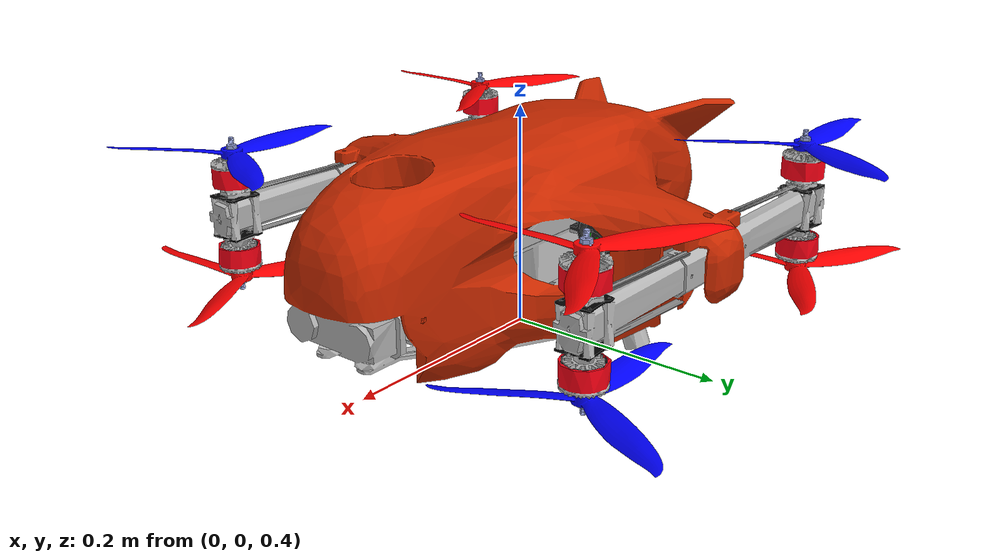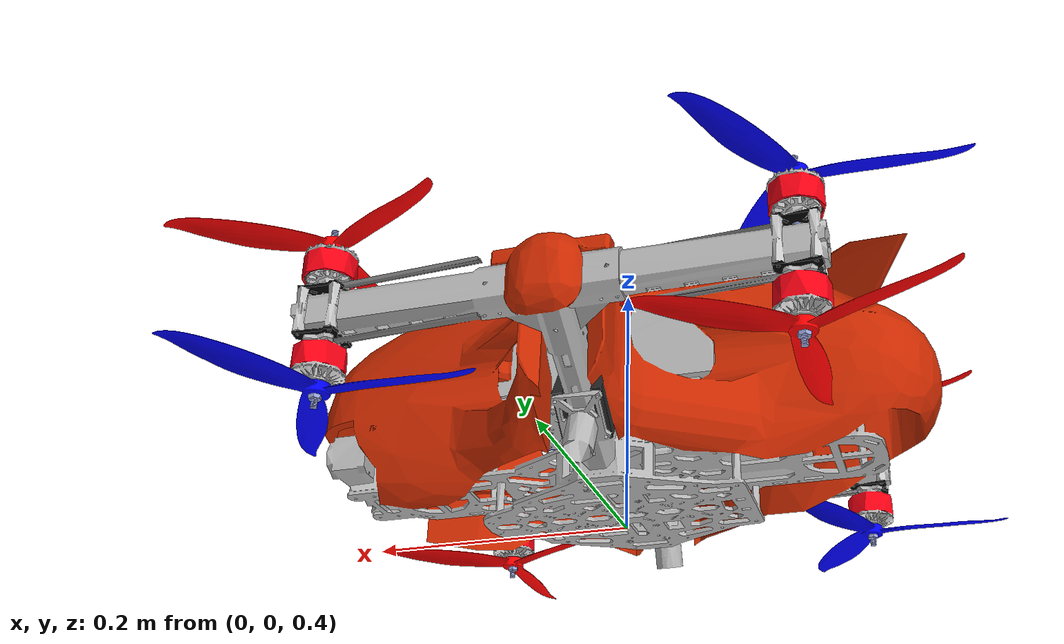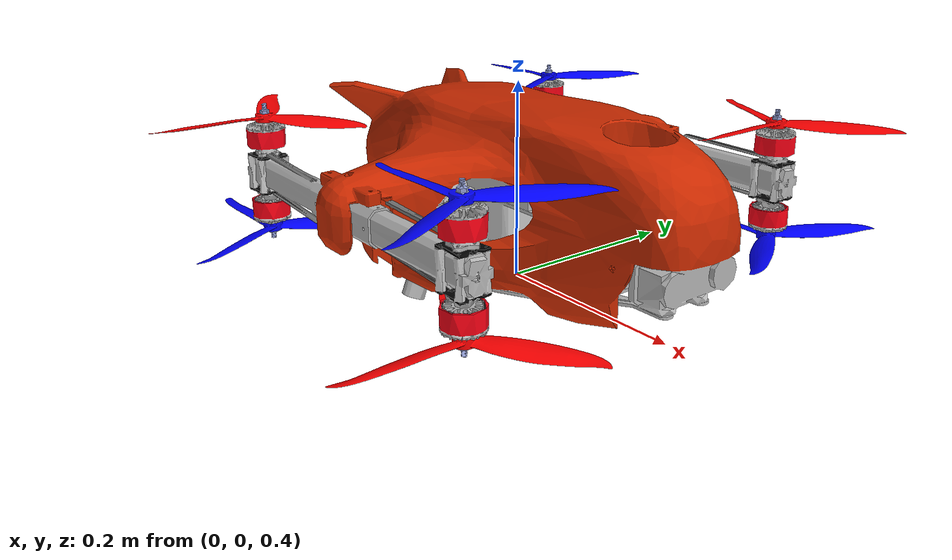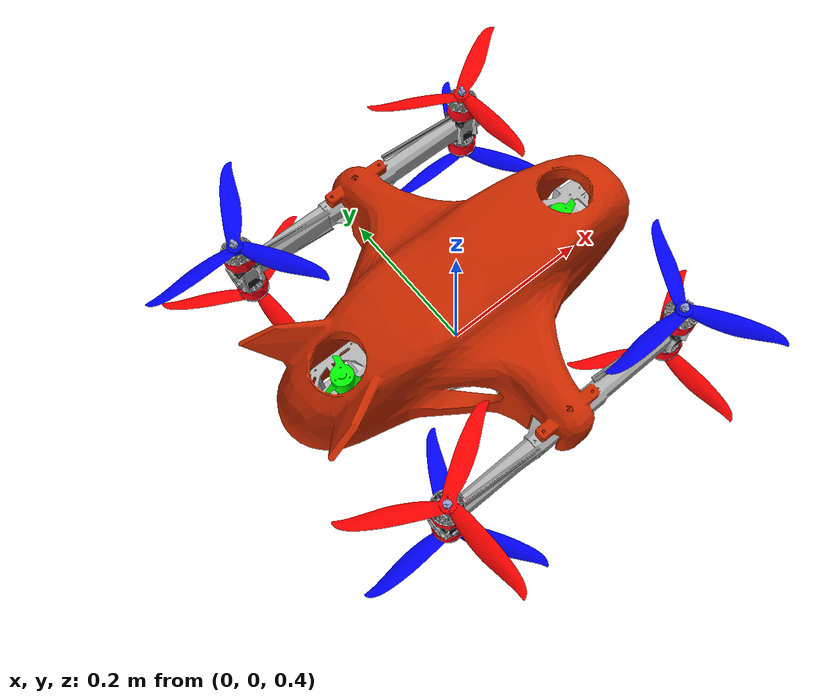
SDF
<?xml version="1.0" encoding="UTF-8"?>
<sdf version="1.9">
  <model name="teleaquah8">
    <!-- 虚拟世界链接：补充惯性（Gazebo必需） -->
    <!-- 使用 ball 关节直接连接到 world -->

    <pose>0 0 0.5 0 0 0</pose>

    <link name="base_link">
      <gravity>1</gravity>
      <velocity_decay>
        <linear>0.1</linear>
        <angular>0.1</angular>
      </velocity_decay>

      <inertial>
        <mass>4.1</mass>
        <inertia>
          <ixx>0.07</ixx>
          <ixy>0</ixy>
          <ixz>0</ixz>

          <iyy>0.07</iyy>
          <iyz>0</iyz>

          <izz>0.10</izz>
        </inertia>
        <pose>0 0 -0.05 0 0 0</pose>
      </inertial>

      <visual name="base_visual">
        <geometry>
          <mesh>
            <scale>1 1 1</scale>
            <uri>model://teleaquah8/meshes/model.dae</uri>
          </mesh>
        </geometry>
      </visual>

      <collision name="base_buoyancy_collision">
        <pose>0 0 -0.03 0 0 0</pose>
        <geometry>
          <box><size>0.26 0.18 0.05</size></box>
        </geometry>
        <surface>
          <contact>
            <ode>
              <min_depth>0.001</min_depth>
              <max_vel>0.1</max_vel>
              <kp>100000.0</kp>
              <kd>100.0</kd>
            </ode>
          </contact>
          <friction>
            <ode>
              <mu>0.4</mu>
              <mu2>0.4</mu2>
            </ode>
          </friction>
        </surface>
      </collision>

      <sensor name="imu_sensor" type="imu">
        <always_on>1</always_on>
        <update_rate>250</update_rate>
        <visualize>true</visualize>
        <imu>
          <angular_velocity>
            <x><noise type="gaussian"><mean>0</mean><stddev>2e-4</stddev></noise></x>
            <y><noise type="gaussian"><mean>0</mean><stddev>2e-4</stddev></noise></y>
            <z><noise type="gaussian"><mean>0</mean><stddev>2e-4</stddev></noise></z>
          </angular_velocity>
          <linear_acceleration>
            <x><noise type="gaussian"><mean>0</mean><stddev>1.7e-2</stddev></noise></x>
            <y><noise type="gaussian"><mean>0</mean><stddev>1.7e-2</stddev></noise></y>
            <z><noise type="gaussian"><mean>0</mean><stddev>1.7e-2</stddev></noise></z>
          </linear_acceleration>
        </imu>
      </sensor>
      <sensor name="magnetometer_sensor" type="magnetometer">
        <always_on>1</always_on>
        <update_rate>100</update_rate>
        <magnetometer>
          <x><noise type="gaussian"><stddev>0.0001</stddev></noise></x>
          <y><noise type="gaussian"><stddev>0.0001</stddev></noise></y>
          <z><noise type="gaussian"><stddev>0.0001</stddev></noise></z>
        </magnetometer>
      </sensor>
      <sensor name="air_pressure_sensor" type="air_pressure">
        <always_on>1</always_on>
        <update_rate>50</update_rate>
        <air_pressure>
          <pressure>
            <noise type="gaussian"><mean>0</mean><stddev>0.01</stddev></noise>
          </pressure>
        </air_pressure>
      </sensor>
      <sensor name="navsat_sensor" type="navsat">
        <always_on>1</always_on>
        <update_rate>30</update_rate>
      </sensor>
    </link>

    <link name="buoyancy_shell_link">
      <pose relative_to="base_link">0 0 0 0 0 0</pose>
      <inertial>
        <mass>1e-6</mass>
        <inertia>
          <ixx>1e-9</ixx>
          <iyy>1e-9</iyy>
          <izz>1e-9</izz>
          <ixy>0</ixy>
          <ixz>0</ixz>
          <iyz>0</iyz>
        </inertia>
      </inertial>

      <collision name="shell_buoyancy_collision">
        <pose>0 0 0.05 0 0 0</pose>
        <geometry>
          <box>
            <size>0.24 0.24 0.0546</size>
          </box>
        </geometry>
      </collision>
    </link>

    <joint name="buoyancy_shell_joint" type="fixed">
      <parent>base_link</parent>
      <child>buoyancy_shell_link</child>
    </joint>

    <joint name="rotor_0_joint" type="revolute">
      <parent>base_link</parent>
      <child>rotor_0</child>
      <pose relative_to="base_link">0.163 -0.187 0.061 0 0 0</pose>
      <axis><xyz>0 0 1</xyz></axis>
    </joint>
    <link name="rotor_0">
      <pose relative_to="rotor_0_joint">0 0 0 0 0 0</pose>
      <inertial><mass>0.113</mass><inertia><ixx>0.0001</ixx><iyy>0.0001</iyy><izz>0.0002</izz></inertia></inertial>
      <visual name="rotor_0_visual"><geometry><mesh><scale>1 1 1</scale><uri>model://teleaquah8/meshes/ccw_prop.stl</uri></mesh></geometry><material><diffuse>0 0 1 1</diffuse></material></visual>
    </link>
    <plugin filename="gz-sim-multicopter-motor-model-system" name="gz::sim::systems::MulticopterMotorModel">
      <jointName>rotor_0_joint</jointName>
      <linkName>rotor_0</linkName>
      <turningDirection>ccw</turningDirection>
      <timeConstantUp>0.015</timeConstantUp><timeConstantDown>0.03</timeConstantDown>
      <maxRotVelocity>1585</maxRotVelocity>
      <motorConstant>1.64e-05</motorConstant>
      <momentConstant>0.018</momentConstant>
      <commandSubTopic>command/motor_speed</commandSubTopic>
      <motorNumber>0</motorNumber>
      <rotorDragCoefficient>0.0001</rotorDragCoefficient><rollingMomentCoefficient>1e-06</rollingMomentCoefficient>
      <motorType>velocity</motorType>
    </plugin>

    <joint name="rotor_1_joint" type="revolute">
      <parent>base_link</parent>
      <child>rotor_1</child>
      <pose relative_to="base_link">0.163 0.187 0.061 0 0 0</pose>
      <axis><xyz>0 0 1</xyz></axis>
    </joint>
    <link name="rotor_1">
      <pose relative_to="rotor_1_joint">0 0 0 0 0 0</pose>
      <inertial><mass>0.113</mass><inertia><ixx>0.0001</ixx><iyy>0.0001</iyy><izz>0.0002</izz></inertia></inertial>
      <visual name="rotor_1_visual"><geometry><mesh><scale>1 1 1</scale><uri>model://teleaquah8/meshes/cw_prop.stl</uri></mesh></geometry><material><diffuse>1 0 0 1</diffuse></material></visual>
    </link>
    <plugin filename="gz-sim-multicopter-motor-model-system" name="gz::sim::systems::MulticopterMotorModel">
      <jointName>rotor_1_joint</jointName>
      <linkName>rotor_1</linkName>
      <turningDirection>cw</turningDirection>
      <timeConstantUp>0.015</timeConstantUp><timeConstantDown>0.03</timeConstantDown>
      <maxRotVelocity>1585</maxRotVelocity>
      <motorConstant>1.64e-05</motorConstant>
      <momentConstant>0.018</momentConstant>
      <commandSubTopic>command/motor_speed</commandSubTopic>
      <motorNumber>1</motorNumber>
      <rotorDragCoefficient>0.0001</rotorDragCoefficient><rollingMomentCoefficient>1e-06</rollingMomentCoefficient>
      <motorType>velocity</motorType>
    </plugin>

    <joint name="rotor_2_joint" type="revolute">
      <parent>base_link</parent>
      <child>rotor_2</child>
      <pose relative_to="base_link">-0.166 0.187 0.061 0 0 0</pose>
      <axis><xyz>0 0 1</xyz></axis>
    </joint>
    <link name="rotor_2">
      <pose relative_to="rotor_2_joint">0 0 0 0 0 0</pose>
      <inertial><mass>0.113</mass><inertia><ixx>0.0001</ixx><iyy>0.0001</iyy><izz>0.0002</izz></inertia></inertial>
      <visual name="rotor_2_visual"><geometry><mesh><scale>1 1 1</scale><uri>model://teleaquah8/meshes/ccw_prop.stl</uri></mesh></geometry><material><diffuse>0 0 1 1</diffuse></material></visual>
    </link>
    <plugin filename="gz-sim-multicopter-motor-model-system" name="gz::sim::systems::MulticopterMotorModel">
      <jointName>rotor_2_joint</jointName>
      <linkName>rotor_2</linkName>
      <turningDirection>ccw</turningDirection>
      <timeConstantUp>0.015</timeConstantUp><timeConstantDown>0.03</timeConstantDown>
      <maxRotVelocity>1585</maxRotVelocity>
      <motorConstant>1.64e-05</motorConstant>
      <momentConstant>0.018</momentConstant>
      <commandSubTopic>command/motor_speed</commandSubTopic>
      <motorNumber>2</motorNumber>
      <rotorDragCoefficient>0.0001</rotorDragCoefficient><rollingMomentCoefficient>1e-06</rollingMomentCoefficient>
      <motorType>velocity</motorType>
    </plugin>

    <joint name="rotor_3_joint" type="revolute">
      <parent>base_link</parent>
      <child>rotor_3</child>
      <pose relative_to="base_link">-0.166 -0.187 0.061 0 0 0</pose>
      <axis><xyz>0 0 1</xyz></axis>
    </joint>
    <link name="rotor_3">
      <pose relative_to="rotor_3_joint">0 0 0 0 0 0</pose>
      <inertial><mass>0.113</mass><inertia><ixx>0.0001</ixx><iyy>0.0001</iyy><izz>0.0002</izz></inertia></inertial>
      <visual name="rotor_3_visual"><geometry><mesh><scale>1 1 1</scale><uri>model://teleaquah8/meshes/cw_prop.stl</uri></mesh></geometry><material><diffuse>1 0 0 1</diffuse></material></visual>
    </link>
    <plugin filename="gz-sim-multicopter-motor-model-system" name="gz::sim::systems::MulticopterMotorModel">
      <jointName>rotor_3_joint</jointName>
      <linkName>rotor_3</linkName>
      <turningDirection>cw</turningDirection>
      <timeConstantUp>0.015</timeConstantUp><timeConstantDown>0.03</timeConstantDown>
      <maxRotVelocity>1585</maxRotVelocity>
      <motorConstant>1.64e-05</motorConstant>
      <momentConstant>0.018</momentConstant>
      <commandSubTopic>command/motor_speed</commandSubTopic>
      <motorNumber>3</motorNumber>
      <rotorDragCoefficient>0.0001</rotorDragCoefficient><rollingMomentCoefficient>1e-06</rollingMomentCoefficient>
      <motorType>velocity</motorType>
    </plugin>

    <joint name="rotor_4_joint" type="revolute">
      <parent>base_link</parent>
      <child>rotor_4</child>
      <pose relative_to="base_link">0.163 0.187 -0.052 0 0 0</pose>
      <axis><xyz>0 0 1</xyz></axis>
    </joint>
    <link name="rotor_4">
      <pose relative_to="rotor_4_joint">0 0 0 0 0 0</pose>
      <inertial><mass>0.113</mass><inertia><ixx>0.0001</ixx><iyy>0.0001</iyy><izz>0.0002</izz></inertia></inertial>
      <visual name="rotor_4_visual"><geometry><mesh><scale>1 1 1</scale><uri>model://teleaquah8/meshes/ccw_prop.stl</uri></mesh></geometry><material><diffuse>0 0 1 1</diffuse></material></visual>
    </link>
    <plugin filename="gz-sim-multicopter-motor-model-system" name="gz::sim::systems::MulticopterMotorModel">
      <jointName>rotor_4_joint</jointName>
      <linkName>rotor_4</linkName>
      <turningDirection>ccw</turningDirection>
      <timeConstantUp>0.015</timeConstantUp><timeConstantDown>0.03</timeConstantDown>
      <maxRotVelocity>1585</maxRotVelocity>
      <motorConstant>1.64e-05</motorConstant>
      <momentConstant>0.018</momentConstant>
      <commandSubTopic>command/motor_speed</commandSubTopic>
      <motorNumber>4</motorNumber>
      <rotorDragCoefficient>0.0001</rotorDragCoefficient><rollingMomentCoefficient>1e-06</rollingMomentCoefficient>
      <motorType>velocity</motorType>
    </plugin>

    <joint name="rotor_5_joint" type="revolute">
      <parent>base_link</parent>
      <child>rotor_5</child>
      <pose relative_to="base_link">0.163 -0.187 -0.052 0 0 0</pose>
      <axis><xyz>0 0 1</xyz></axis>
    </joint>
    <link name="rotor_5">
      <pose relative_to="rotor_5_joint">0 0 0 0 0 0</pose>
      <inertial><mass>0.113</mass><inertia><ixx>0.0001</ixx><iyy>0.0001</iyy><izz>0.0002</izz></inertia></inertial>
      <visual name="rotor_5_visual"><geometry><mesh><scale>1 1 1</scale><uri>model://teleaquah8/meshes/cw_prop.stl</uri></mesh></geometry><material><diffuse>1 0 0 1</diffuse></material></visual>
    </link>
    <plugin filename="gz-sim-multicopter-motor-model-system" name="gz::sim::systems::MulticopterMotorModel">
      <jointName>rotor_5_joint</jointName>
      <linkName>rotor_5</linkName>
      <turningDirection>cw</turningDirection>
      <timeConstantUp>0.015</timeConstantUp><timeConstantDown>0.03</timeConstantDown>
      <maxRotVelocity>1585</maxRotVelocity>
      <motorConstant>1.64e-05</motorConstant>
      <momentConstant>0.018</momentConstant>
      <commandSubTopic>command/motor_speed</commandSubTopic>
      <motorNumber>5</motorNumber>
      <rotorDragCoefficient>0.0001</rotorDragCoefficient><rollingMomentCoefficient>1e-06</rollingMomentCoefficient>
      <motorType>velocity</motorType>
    </plugin>

    <joint name="rotor_6_joint" type="revolute">
      <parent>base_link</parent>
      <child>rotor_6</child>
      <pose relative_to="base_link">-0.166 -0.187 -0.052 0 0 0</pose>
      <axis><xyz>0 0 1</xyz></axis>
    </joint>
    <link name="rotor_6">
      <pose relative_to="rotor_6_joint">0 0 0 0 0 0</pose>
      <inertial><mass>0.113</mass><inertia><ixx>0.0001</ixx><iyy>0.0001</iyy><izz>0.0002</izz></inertia></inertial>
      <visual name="rotor_6_visual"><geometry><mesh><scale>1 1 1</scale><uri>model://teleaquah8/meshes/ccw_prop.stl</uri></mesh></geometry><material><diffuse>0 0 1 1</diffuse></material></visual>
    </link>
    <plugin filename="gz-sim-multicopter-motor-model-system" name="gz::sim::systems::MulticopterMotorModel">
      <jointName>rotor_6_joint</jointName>
      <linkName>rotor_6</linkName>
      <turningDirection>ccw</turningDirection>
      <timeConstantUp>0.015</timeConstantUp><timeConstantDown>0.03</timeConstantDown>
      <maxRotVelocity>1585</maxRotVelocity>
      <motorConstant>1.64e-05</motorConstant>
      <momentConstant>0.018</momentConstant>
      <commandSubTopic>command/motor_speed</commandSubTopic>
      <motorNumber>6</motorNumber>
      <rotorDragCoefficient>0.0001</rotorDragCoefficient><rollingMomentCoefficient>1e-06</rollingMomentCoefficient>
      <motorType>velocity</motorType>
    </plugin>

    <joint name="rotor_7_joint" type="revolute">
      <parent>base_link</parent>
      <child>rotor_7</child>
      <pose relative_to="base_link">-0.166 0.187 -0.052 0 0 0</pose>
      <axis><xyz>0 0 1</xyz></axis>
    </joint>
    <link name="rotor_7">
      <pose relative_to="rotor_7_joint">0 0 0 0 0 0</pose>
      <inertial><mass>0.113</mass><inertia><ixx>0.0001</ixx><iyy>0.0001</iyy><izz>0.0002</izz></inertia></inertial>
      <visual name="rotor_7_visual"><geometry><mesh><scale>1 1 1</scale><uri>model://teleaquah8/meshes/cw_prop.stl</uri></mesh></geometry><material><diffuse>1 0 0 1</diffuse></material></visual>
    </link>
    <plugin filename="gz-sim-multicopter-motor-model-system" name="gz::sim::systems::MulticopterMotorModel">
      <jointName>rotor_7_joint</jointName>
      <linkName>rotor_7</linkName>
      <turningDirection>cw</turningDirection>
      <timeConstantUp>0.015</timeConstantUp><timeConstantDown>0.03</timeConstantDown>
      <maxRotVelocity>1585</maxRotVelocity>
      <motorConstant>1.64e-05</motorConstant>
      <momentConstant>0.018</momentConstant>
      <commandSubTopic>command/motor_speed</commandSubTopic>
      <motorNumber>7</motorNumber>
      <rotorDragCoefficient>0.0001</rotorDragCoefficient><rollingMomentCoefficient>1e-06</rollingMomentCoefficient>
      <motorType>velocity</motorType>
    </plugin>

    <joint name="rotor_8_joint" type="revolute">
      <parent>base_link</parent>
      <child>rotor_8</child>
      <pose relative_to="base_link">-0.004 -0.093 0.003 0 0 0</pose>
      <axis><xyz>-1 0 0</xyz></axis>
    </joint>
    <link name="rotor_8">
      <pose relative_to="rotor_8_joint">0 0 0 0 0 0</pose>
      <inertial><mass>0.1</mass><inertia><ixx>0.001</ixx><iyy>0.001</iyy><izz>0.001</izz></inertia></inertial>
      <visual name="rotor_8_visual"><geometry><mesh><scale>1 1 1</scale><uri>model://teleaquah8/meshes/right_waterprop.stl</uri></mesh></geometry><material><diffuse>0 1 0 1</diffuse></material></visual>
    </link>
    <plugin filename="gz-sim-bidir-motor-model-system" name="gz::sim::v8::systems::BiDirectionalMotorModel">
      <jointName>rotor_8_joint</jointName>
      <linkName>rotor_8</linkName>
      <turningDirection>ccw</turningDirection>
      <timeConstantUp>0.0125</timeConstantUp>
      <timeConstantDown>0.025</timeConstantDown>
      <motorConstant>9.6065e-07</motorConstant>
      <momentConstant>-3.318e-10</momentConstant>
      <commandSubTopic>servo_0</commandSubTopic>
      <motorNumber>0</motorNumber>
      <thrustAxis>-1 0 0</thrustAxis>
      <commandGain>57.29</commandGain>
      <deadbandOmega>10</deadbandOmega>
      <maxOmega>3500</maxOmega>
      <maxThrust>15</maxThrust>
      <maxTorque>1.5</maxTorque>
      <forwardCoeff>1.0</forwardCoeff>
      <reverseCoeff>0.86</reverseCoeff>
    </plugin>

    <joint name="rotor_9_joint" type="revolute">
      <parent>base_link</parent>
      <child>rotor_9</child>
      <pose relative_to="base_link">0.159 0 0.017 0 0 0</pose>
      <axis><xyz>0 0 -1</xyz></axis>
    </joint>
    <link name="rotor_9">
      <pose relative_to="rotor_9_joint">0 0 0 0 0 0</pose>
      <inertial><mass>0.1</mass><inertia><ixx>0.001</ixx><iyy>0.001</iyy><izz>0.001</izz></inertia></inertial>
      <visual name="rotor_9_visual"><geometry><mesh><scale>1 1 1</scale><uri>model://teleaquah8/meshes/front_waterprop.stl</uri></mesh></geometry><material><diffuse>0 1 0 1</diffuse></material></visual>
    </link>
    <plugin filename="gz-sim-bidir-motor-model-system" name="gz::sim::v8::systems::BiDirectionalMotorModel">
      <jointName>rotor_9_joint</jointName>
      <linkName>rotor_9</linkName>
      <turningDirection>ccw</turningDirection>
      <timeConstantUp>0.0125</timeConstantUp>
      <timeConstantDown>0.025</timeConstantDown>
      <motorConstant>9.6065e-07</motorConstant>
      <momentConstant>-3.318e-10</momentConstant>
      <commandSubTopic>servo_1</commandSubTopic>
      <motorNumber>0</motorNumber>
      <thrustAxis>0 0 -1</thrustAxis>
      <commandGain>57.29</commandGain>
      <deadbandOmega>10</deadbandOmega>
      <maxOmega>3500</maxOmega>
      <maxThrust>15</maxThrust>
      <maxTorque>1.5</maxTorque>
      <forwardCoeff>1.0</forwardCoeff>
      <reverseCoeff>0.86</reverseCoeff>
    </plugin>

    <joint name="rotor_10_joint" type="revolute">
      <parent>base_link</parent>
      <child>rotor_10</child>
      <pose relative_to="base_link">-0.004 0.093 0.003 0 0 0</pose>
      <axis><xyz>1 0 0</xyz></axis>
    </joint>
    <link name="rotor_10">
      <pose relative_to="rotor_10_joint">0 0 0 0 0 0</pose>
      <inertial><mass>0.1</mass><inertia><ixx>0.001</ixx><iyy>0.001</iyy><izz>0.001</izz></inertia></inertial>
      <visual name="rotor_10_visual"><geometry><mesh><scale>1 1 1</scale><uri>model://teleaquah8/meshes/left_waterprop.stl</uri></mesh></geometry><material><diffuse>0 1 0 1</diffuse></material></visual>
    </link>
    <plugin filename="gz-sim-bidir-motor-model-system" name="gz::sim::v8::systems::BiDirectionalMotorModel">
      <jointName>rotor_10_joint</jointName>
      <linkName>rotor_10</linkName>
      <turningDirection>ccw</turningDirection>
      <timeConstantUp>0.0125</timeConstantUp>
      <timeConstantDown>0.025</timeConstantDown>
      <motorConstant>9.6065e-07</motorConstant>
      <momentConstant>-3.318e-10</momentConstant>
      <commandSubTopic>servo_2</commandSubTopic>
      <motorNumber>0</motorNumber>
      <thrustAxis>1 0 0</thrustAxis>
      <commandGain>57.29</commandGain>
      <deadbandOmega>10</deadbandOmega>
      <maxOmega>3500</maxOmega>
      <maxThrust>15</maxThrust>
      <maxTorque>1.5</maxTorque>
      <forwardCoeff>1.0</forwardCoeff>
      <reverseCoeff>0.86</reverseCoeff>
    </plugin>

    <joint name="rotor_11_joint" type="revolute">
      <parent>base_link</parent>
      <child>rotor_11</child>
      <pose relative_to="base_link">-0.161 0. 0.017 0 0 0</pose>
      <axis><xyz>0 0 -1</xyz></axis>
    </joint>
    <link name="rotor_11">
      <pose relative_to="rotor_11_joint">0 0 0 0 0 0</pose>
      <inertial><mass>0.1</mass><inertia><ixx>0.001</ixx><iyy>0.001</iyy><izz>0.001</izz></inertia></inertial>
      <visual name="rotor_11_visual"><geometry><mesh><scale>1 1 1</scale><uri>model://teleaquah8/meshes/back_waterprop.stl</uri></mesh></geometry><material><diffuse>0 1 0 1</diffuse></material></visual>
    </link>
    <plugin filename="gz-sim-bidir-motor-model-system" name="gz::sim::v8::systems::BiDirectionalMotorModel">
      <jointName>rotor_11_joint</jointName>
      <linkName>rotor_11</linkName>
      <turningDirection>ccw</turningDirection>
      <timeConstantUp>0.0125</timeConstantUp>
      <timeConstantDown>0.025</timeConstantDown>
      <motorConstant>9.6065e-07</motorConstant>
      <momentConstant>-3.318e-10</momentConstant>
      <commandSubTopic>servo_3</commandSubTopic>
      <motorNumber>0</motorNumber>
      <thrustAxis>0 0 -1</thrustAxis>
      <commandGain>57.29</commandGain>
      <deadbandOmega>10</deadbandOmega>
      <maxOmega>3500</maxOmega>
      <maxThrust>15</maxThrust>
      <maxTorque>1.5</maxTorque>
      <forwardCoeff>1.0</forwardCoeff>
      <reverseCoeff>0.86</reverseCoeff>
    </plugin>
    <plugin filename="/home/user/external/plugins/hydrodynamics/build/libhydrodynamics.so" name="zyshine3_gz_plugins::HybridHydrodynamics">
      <hydrodynamics>
        <link_name>base_link</link_name>
        <surface_z>0.0</surface_z>
        <transition_band>0.1</transition_band>
        <fluid_density_water>1000.0</fluid_density_water>
        <fluid_density_air>1.225</fluid_density_air>
        <default_current>0 0 0</default_current>
        <air_clearance_margin>-0.02</air_clearance_margin>
        <sample_point>0.22 0.0 0.08</sample_point>
        <sample_point>0.22 0.0 -0.05</sample_point>
        <sample_point>0.10 0.18 0.06</sample_point>
        <sample_point>0.10 -0.18 0.06</sample_point>
        <sample_point>0.00 0.0 0.10</sample_point>
        <sample_point>0.00 0.0 -0.06</sample_point>
        <sample_point>-0.18 0.18 0.04</sample_point>
        <sample_point>-0.18 -0.18 0.04</sample_point>
        <sample_point>-0.22 0.0 -0.02</sample_point>

        <water_thruster_link_name>rotor_8</water_thruster_link_name>
        <water_thruster_link_name>rotor_9</water_thruster_link_name>
        <water_thruster_link_name>rotor_10</water_thruster_link_name>
        <water_thruster_link_name>rotor_11</water_thruster_link_name>

        <air_prop_link_name>rotor_0</air_prop_link_name>
        <air_prop_link_name>rotor_1</air_prop_link_name>
        <air_prop_link_name>rotor_2</air_prop_link_name>
        <air_prop_link_name>rotor_3</air_prop_link_name>
        <air_prop_link_name>rotor_4</air_prop_link_name>
        <air_prop_link_name>rotor_5</air_prop_link_name>
        <air_prop_link_name>rotor_6</air_prop_link_name>
        <air_prop_link_name>rotor_7</air_prop_link_name>

        <enable_added_mass>true</enable_added_mass>
        <enable_added_mass_coriolis>true</enable_added_mass_coriolis>
        <xDotU>-0.6</xDotU>
        <yDotV>-1.0</yDotV>
        <zDotW>-0.6</zDotW>
        <kDotP>-0.1</kDotP>
        <mDotQ>-0.05</mDotQ>
        <nDotR>-0.04</nDotR>

        <added_mass_velocity_filter_tau>0.03</added_mass_velocity_filter_tau>
        <added_mass_accel_filter_tau>0.06</added_mass_accel_filter_tau>
        <added_mass_linear_accel_limit>4.0</added_mass_linear_accel_limit>
        <added_mass_angular_accel_limit>8.0</added_mass_angular_accel_limit>
        <added_mass_linear_jerk_limit>20.0</added_mass_linear_jerk_limit>
        <added_mass_angular_jerk_limit>40.0</added_mass_angular_jerk_limit>
        <added_mass_reset_scale_threshold>0.05</added_mass_reset_scale_threshold>

        <xU>-12.0</xU>
        <xUabsU>-15.0</xUabsU>
        <yV>-25.0</yV>
        <yVabsV>-65.0</yVabsV>
        <zW>-25.0</zW>
        <zWabsW>-42.0</zWabsW>
        <kP>-5.2</kP>
        <kPabsP>-1.5</kPabsP>
        <mQ>-5.0</mQ>
        <mQabsQ>-9.0</mQabsQ>
        <nR>-4.5</nR>
        <nRabsR>-10.5</nRabsR>
      </hydrodynamics>
    </plugin>
    <plugin filename="gz-sim-pose-publisher-system" name="gz::sim::systems::PosePublisher">
      <publish_link_pose>false</publish_link_pose>
      <publish_nested_model_pose>true</publish_nested_model_pose>
      <publish_model_pose>true</publish_model_pose>  <!-- 显式启用模型位姿发布 -->
      <publish_pose_topic>/model/mcuuv_0/pose</publish_pose_topic>
    </plugin>
  </model>
</sdf>
